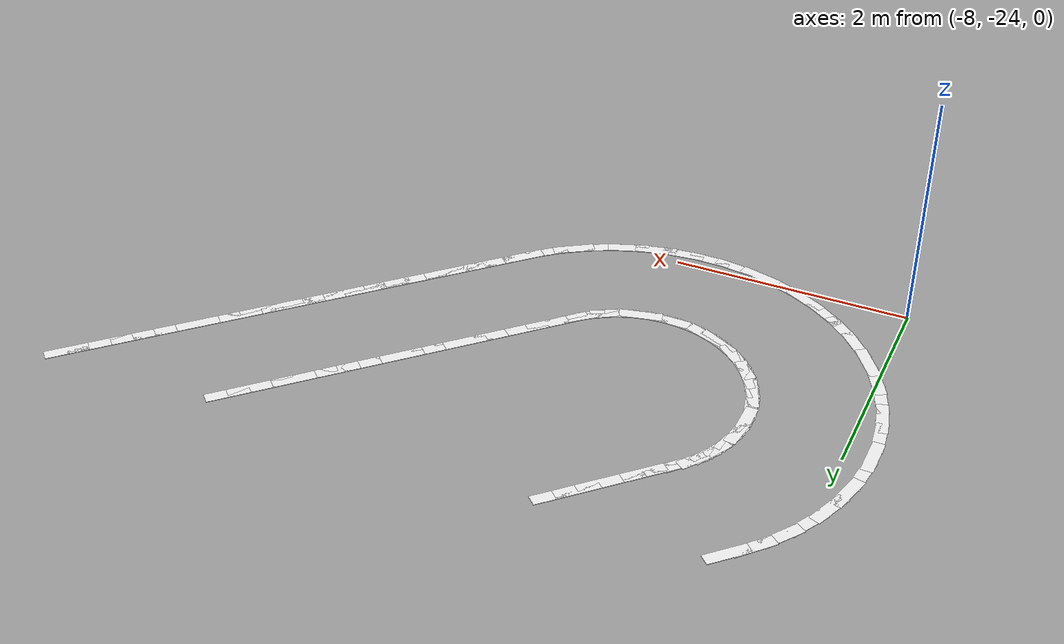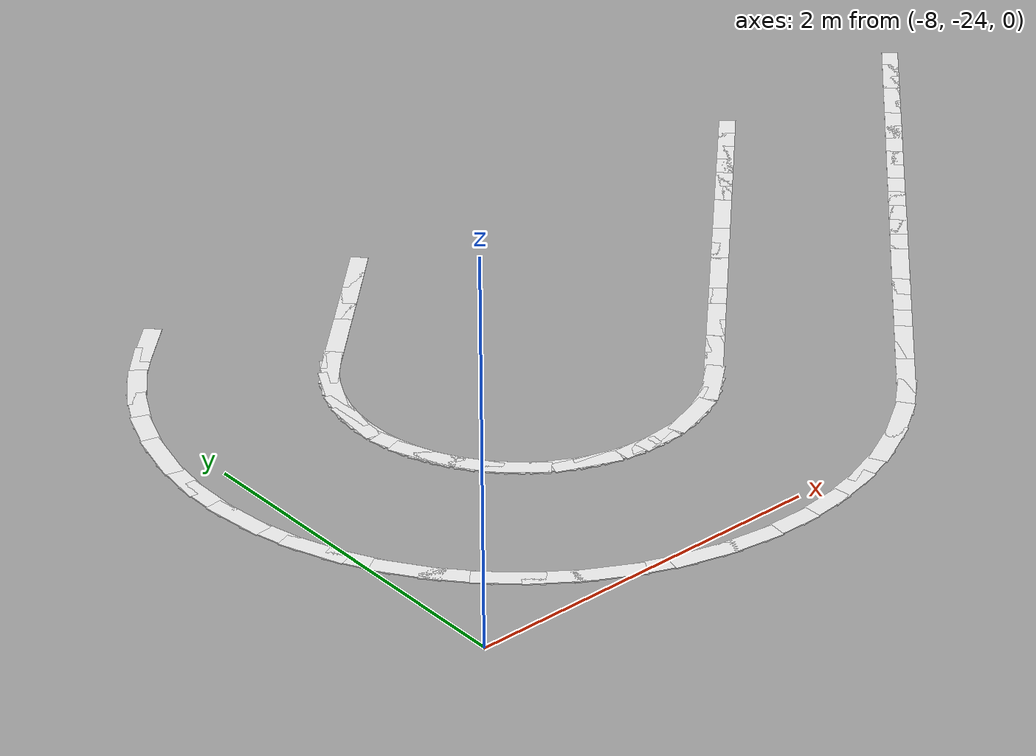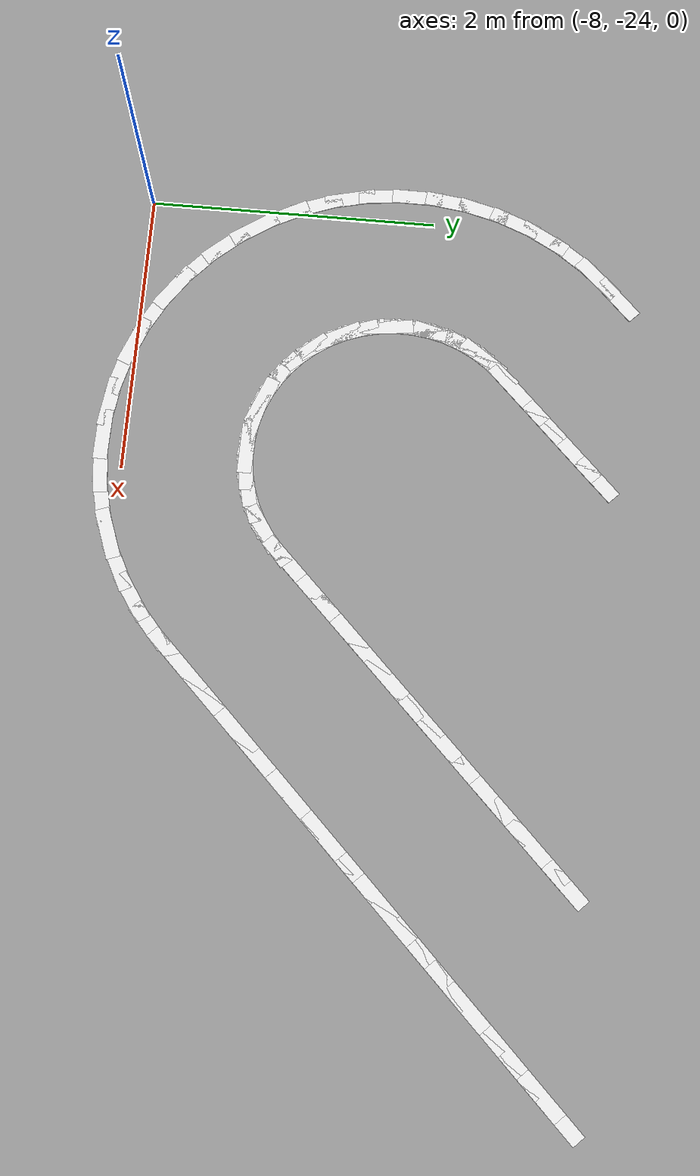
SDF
<sdf version="1.7">
 <world name="cone_lane">
  <model name="ground_plane">
   <static>true</static>
   <link name="link">
    <collision name="collision">
     <geometry><plane><normal>0 0 1</normal><size>150 150</size></plane></geometry>
     <surface><friction><ode><mu>1.0</mu></ode></friction></surface>
    </collision>
   </link>
  </model>
  <model name="line_L219">
   <static>true</static>
   <pose>-6.203 -20.738 0.0030 0 0 -2.3562</pose>
   <link name="link">
    <visual name="v">
     <geometry><box><size>0.360 0.100 0.005</size></box></geometry>
     <material>
      <ambient>0.85 0.85 0.85 1</ambient>
      <diffuse>0.95 0.95 0.95 1</diffuse>
      <specular>0.1 0.1 0.1 1</specular>
      <emissive>0.7 0.7 0.7 1</emissive>
     </material>
    </visual>
   </link>
  </model>
  <model name="line_L220">
   <static>true</static>
   <pose>-6.330 -20.866 0.0030 0 0 -2.3562</pose>
   <link name="link">
    <visual name="v">
     <geometry><box><size>0.360 0.100 0.005</size></box></geometry>
     <material>
      <ambient>0.85 0.85 0.85 1</ambient>
      <diffuse>0.95 0.95 0.95 1</diffuse>
      <specular>0.1 0.1 0.1 1</specular>
      <emissive>0.7 0.7 0.7 1</emissive>
     </material>
    </visual>
   </link>
  </model>
  <model name="line_L221">
   <static>true</static>
   <pose>-6.457 -20.993 0.0030 0 0 -2.3562</pose>
   <link name="link">
    <visual name="v">
     <geometry><box><size>0.360 0.100 0.005</size></box></geometry>
     <material>
      <ambient>0.85 0.85 0.85 1</ambient>
      <diffuse>0.95 0.95 0.95 1</diffuse>
      <specular>0.1 0.1 0.1 1</specular>
      <emissive>0.7 0.7 0.7 1</emissive>
     </material>
    </visual>
   </link>
  </model>
  <model name="line_L222">
   <static>true</static>
   <pose>-6.585 -21.120 0.0030 0 0 -2.3562</pose>
   <link name="link">
    <visual name="v">
     <geometry><box><size>0.360 0.100 0.005</size></box></geometry>
     <material>
      <ambient>0.85 0.85 0.85 1</ambient>
      <diffuse>0.95 0.95 0.95 1</diffuse>
      <specular>0.1 0.1 0.1 1</specular>
      <emissive>0.7 0.7 0.7 1</emissive>
     </material>
    </visual>
   </link>
  </model>
  <model name="line_L223">
   <static>true</static>
   <pose>-6.712 -21.247 0.0030 0 0 -2.3562</pose>
   <link name="link">
    <visual name="v">
     <geometry><box><size>0.360 0.100 0.005</size></box></geometry>
     <material>
      <ambient>0.85 0.85 0.85 1</ambient>
      <diffuse>0.95 0.95 0.95 1</diffuse>
      <specular>0.1 0.1 0.1 1</specular>
      <emissive>0.7 0.7 0.7 1</emissive>
     </material>
    </visual>
   </link>
  </model>
  <model name="line_L224">
   <static>true</static>
   <pose>-6.839 -21.375 0.0030 0 0 -2.3562</pose>
   <link name="link">
    <visual name="v">
     <geometry><box><size>0.360 0.100 0.005</size></box></geometry>
     <material>
      <ambient>0.85 0.85 0.85 1</ambient>
      <diffuse>0.95 0.95 0.95 1</diffuse>
      <specular>0.1 0.1 0.1 1</specular>
      <emissive>0.7 0.7 0.7 1</emissive>
     </material>
    </visual>
   </link>
  </model>
  <model name="line_L225">
   <static>true</static>
   <pose>-6.947 -21.484 0.0030 0 0 -2.3027</pose>
   <link name="link">
    <visual name="v">
     <geometry><box><size>0.360 0.100 0.005</size></box></geometry>
     <material>
      <ambient>0.85 0.85 0.85 1</ambient>
      <diffuse>0.95 0.95 0.95 1</diffuse>
      <specular>0.1 0.1 0.1 1</specular>
      <emissive>0.7 0.7 0.7 1</emissive>
     </material>
    </visual>
   </link>
  </model>
  <model name="line_L226">
   <static>true</static>
   <pose>-7.022 -21.578 0.0030 0 0 -2.1824</pose>
   <link name="link">
    <visual name="v">
     <geometry><box><size>0.360 0.100 0.005</size></box></geometry>
     <material>
      <ambient>0.85 0.85 0.85 1</ambient>
      <diffuse>0.95 0.95 0.95 1</diffuse>
      <specular>0.1 0.1 0.1 1</specular>
      <emissive>0.7 0.7 0.7 1</emissive>
     </material>
    </visual>
   </link>
  </model>
  <model name="line_L227">
   <static>true</static>
   <pose>-7.085 -21.681 0.0030 0 0 -2.0621</pose>
   <link name="link">
    <visual name="v">
     <geometry><box><size>0.360 0.100 0.005</size></box></geometry>
     <material>
      <ambient>0.85 0.85 0.85 1</ambient>
      <diffuse>0.95 0.95 0.95 1</diffuse>
      <specular>0.1 0.1 0.1 1</specular>
      <emissive>0.7 0.7 0.7 1</emissive>
     </material>
    </visual>
   </link>
  </model>
  <model name="line_L228">
   <static>true</static>
   <pose>-7.135 -21.790 0.0030 0 0 -1.9418</pose>
   <link name="link">
    <visual name="v">
     <geometry><box><size>0.360 0.100 0.005</size></box></geometry>
     <material>
      <ambient>0.85 0.85 0.85 1</ambient>
      <diffuse>0.95 0.95 0.95 1</diffuse>
      <specular>0.1 0.1 0.1 1</specular>
      <emissive>0.7 0.7 0.7 1</emissive>
     </material>
    </visual>
   </link>
  </model>
  <model name="line_L229">
   <static>true</static>
   <pose>-7.172 -21.905 0.0030 0 0 -1.8215</pose>
   <link name="link">
    <visual name="v">
     <geometry><box><size>0.360 0.100 0.005</size></box></geometry>
     <material>
      <ambient>0.85 0.85 0.85 1</ambient>
      <diffuse>0.95 0.95 0.95 1</diffuse>
      <specular>0.1 0.1 0.1 1</specular>
      <emissive>0.7 0.7 0.7 1</emissive>
     </material>
    </visual>
   </link>
  </model>
  <model name="line_L230">
   <static>true</static>
   <pose>-7.194 -22.023 0.0030 0 0 -1.7011</pose>
   <link name="link">
    <visual name="v">
     <geometry><box><size>0.360 0.100 0.005</size></box></geometry>
     <material>
      <ambient>0.85 0.85 0.85 1</ambient>
      <diffuse>0.95 0.95 0.95 1</diffuse>
      <specular>0.1 0.1 0.1 1</specular>
      <emissive>0.7 0.7 0.7 1</emissive>
     </material>
    </visual>
   </link>
  </model>
  <model name="line_L231">
   <static>true</static>
   <pose>-7.203 -22.143 0.0030 0 0 -1.5808</pose>
   <link name="link">
    <visual name="v">
     <geometry><box><size>0.360 0.100 0.005</size></box></geometry>
     <material>
      <ambient>0.85 0.85 0.85 1</ambient>
      <diffuse>0.95 0.95 0.95 1</diffuse>
      <specular>0.1 0.1 0.1 1</specular>
      <emissive>0.7 0.7 0.7 1</emissive>
     </material>
    </visual>
   </link>
  </model>
  <model name="line_L232">
   <static>true</static>
   <pose>-7.197 -22.263 0.0030 0 0 -1.4605</pose>
   <link name="link">
    <visual name="v">
     <geometry><box><size>0.360 0.100 0.005</size></box></geometry>
     <material>
      <ambient>0.85 0.85 0.85 1</ambient>
      <diffuse>0.95 0.95 0.95 1</diffuse>
      <specular>0.1 0.1 0.1 1</specular>
      <emissive>0.7 0.7 0.7 1</emissive>
     </material>
    </visual>
   </link>
  </model>
  <model name="line_L233">
   <static>true</static>
   <pose>-7.176 -22.381 0.0030 0 0 -1.3402</pose>
   <link name="link">
    <visual name="v">
     <geometry><box><size>0.360 0.100 0.005</size></box></geometry>
     <material>
      <ambient>0.85 0.85 0.85 1</ambient>
      <diffuse>0.95 0.95 0.95 1</diffuse>
      <specular>0.1 0.1 0.1 1</specular>
      <emissive>0.7 0.7 0.7 1</emissive>
     </material>
    </visual>
   </link>
  </model>
  <model name="line_L234">
   <static>true</static>
   <pose>-7.142 -22.496 0.0030 0 0 -1.2199</pose>
   <link name="link">
    <visual name="v">
     <geometry><box><size>0.360 0.100 0.005</size></box></geometry>
     <material>
      <ambient>0.85 0.85 0.85 1</ambient>
      <diffuse>0.95 0.95 0.95 1</diffuse>
      <specular>0.1 0.1 0.1 1</specular>
      <emissive>0.7 0.7 0.7 1</emissive>
     </material>
    </visual>
   </link>
  </model>
  <model name="line_L235">
   <static>true</static>
   <pose>-7.094 -22.607 0.0030 0 0 -1.0996</pose>
   <link name="link">
    <visual name="v">
     <geometry><box><size>0.360 0.100 0.005</size></box></geometry>
     <material>
      <ambient>0.85 0.85 0.85 1</ambient>
      <diffuse>0.95 0.95 0.95 1</diffuse>
      <specular>0.1 0.1 0.1 1</specular>
      <emissive>0.7 0.7 0.7 1</emissive>
     </material>
    </visual>
   </link>
  </model>
  <model name="line_L236">
   <static>true</static>
   <pose>-7.033 -22.710 0.0030 0 0 -0.9792</pose>
   <link name="link">
    <visual name="v">
     <geometry><box><size>0.360 0.100 0.005</size></box></geometry>
     <material>
      <ambient>0.85 0.85 0.85 1</ambient>
      <diffuse>0.95 0.95 0.95 1</diffuse>
      <specular>0.1 0.1 0.1 1</specular>
      <emissive>0.7 0.7 0.7 1</emissive>
     </material>
    </visual>
   </link>
  </model>
  <model name="line_L237">
   <static>true</static>
   <pose>-6.960 -22.806 0.0030 0 0 -0.8589</pose>
   <link name="link">
    <visual name="v">
     <geometry><box><size>0.360 0.100 0.005</size></box></geometry>
     <material>
      <ambient>0.85 0.85 0.85 1</ambient>
      <diffuse>0.95 0.95 0.95 1</diffuse>
      <specular>0.1 0.1 0.1 1</specular>
      <emissive>0.7 0.7 0.7 1</emissive>
     </material>
    </visual>
   </link>
  </model>
  <model name="line_L238">
   <static>true</static>
   <pose>-6.876 -22.892 0.0030 0 0 -0.7386</pose>
   <link name="link">
    <visual name="v">
     <geometry><box><size>0.360 0.100 0.005</size></box></geometry>
     <material>
      <ambient>0.85 0.85 0.85 1</ambient>
      <diffuse>0.95 0.95 0.95 1</diffuse>
      <specular>0.1 0.1 0.1 1</specular>
      <emissive>0.7 0.7 0.7 1</emissive>
     </material>
    </visual>
   </link>
  </model>
  <model name="line_L239">
   <static>true</static>
   <pose>-6.782 -22.967 0.0030 0 0 -0.6183</pose>
   <link name="link">
    <visual name="v">
     <geometry><box><size>0.360 0.100 0.005</size></box></geometry>
     <material>
      <ambient>0.85 0.85 0.85 1</ambient>
      <diffuse>0.95 0.95 0.95 1</diffuse>
      <specular>0.1 0.1 0.1 1</specular>
      <emissive>0.7 0.7 0.7 1</emissive>
     </material>
    </visual>
   </link>
  </model>
  <model name="line_L240">
   <static>true</static>
   <pose>-6.680 -23.031 0.0030 0 0 -0.4980</pose>
   <link name="link">
    <visual name="v">
     <geometry><box><size>0.360 0.100 0.005</size></box></geometry>
     <material>
      <ambient>0.85 0.85 0.85 1</ambient>
      <diffuse>0.95 0.95 0.95 1</diffuse>
      <specular>0.1 0.1 0.1 1</specular>
      <emissive>0.7 0.7 0.7 1</emissive>
     </material>
    </visual>
   </link>
  </model>
  <model name="line_L241">
   <static>true</static>
   <pose>-6.572 -23.082 0.0030 0 0 -0.3777</pose>
   <link name="link">
    <visual name="v">
     <geometry><box><size>0.360 0.100 0.005</size></box></geometry>
     <material>
      <ambient>0.85 0.85 0.85 1</ambient>
      <diffuse>0.95 0.95 0.95 1</diffuse>
      <specular>0.1 0.1 0.1 1</specular>
      <emissive>0.7 0.7 0.7 1</emissive>
     </material>
    </visual>
   </link>
  </model>
  <model name="line_L242">
   <static>true</static>
   <pose>-6.457 -23.120 0.0030 0 0 -0.2573</pose>
   <link name="link">
    <visual name="v">
     <geometry><box><size>0.360 0.100 0.005</size></box></geometry>
     <material>
      <ambient>0.85 0.85 0.85 1</ambient>
      <diffuse>0.95 0.95 0.95 1</diffuse>
      <specular>0.1 0.1 0.1 1</specular>
      <emissive>0.7 0.7 0.7 1</emissive>
     </material>
    </visual>
   </link>
  </model>
  <model name="line_L243">
   <static>true</static>
   <pose>-6.339 -23.143 0.0030 0 0 -0.1370</pose>
   <link name="link">
    <visual name="v">
     <geometry><box><size>0.360 0.100 0.005</size></box></geometry>
     <material>
      <ambient>0.85 0.85 0.85 1</ambient>
      <diffuse>0.95 0.95 0.95 1</diffuse>
      <specular>0.1 0.1 0.1 1</specular>
      <emissive>0.7 0.7 0.7 1</emissive>
     </material>
    </visual>
   </link>
  </model>
  <model name="line_L244">
   <static>true</static>
   <pose>-6.220 -23.152 0.0030 0 0 -0.0167</pose>
   <link name="link">
    <visual name="v">
     <geometry><box><size>0.360 0.100 0.005</size></box></geometry>
     <material>
      <ambient>0.85 0.85 0.85 1</ambient>
      <diffuse>0.95 0.95 0.95 1</diffuse>
      <specular>0.1 0.1 0.1 1</specular>
      <emissive>0.7 0.7 0.7 1</emissive>
     </material>
    </visual>
   </link>
  </model>
  <model name="line_L245">
   <static>true</static>
   <pose>-6.099 -23.147 0.0030 0 0 0.1036</pose>
   <link name="link">
    <visual name="v">
     <geometry><box><size>0.360 0.100 0.005</size></box></geometry>
     <material>
      <ambient>0.85 0.85 0.85 1</ambient>
      <diffuse>0.95 0.95 0.95 1</diffuse>
      <specular>0.1 0.1 0.1 1</specular>
      <emissive>0.7 0.7 0.7 1</emissive>
     </material>
    </visual>
   </link>
  </model>
  <model name="line_L246">
   <static>true</static>
   <pose>-5.981 -23.128 0.0030 0 0 0.2239</pose>
   <link name="link">
    <visual name="v">
     <geometry><box><size>0.360 0.100 0.005</size></box></geometry>
     <material>
      <ambient>0.85 0.85 0.85 1</ambient>
      <diffuse>0.95 0.95 0.95 1</diffuse>
      <specular>0.1 0.1 0.1 1</specular>
      <emissive>0.7 0.7 0.7 1</emissive>
     </material>
    </visual>
   </link>
  </model>
  <model name="line_L247">
   <static>true</static>
   <pose>-5.865 -23.094 0.0030 0 0 0.3442</pose>
   <link name="link">
    <visual name="v">
     <geometry><box><size>0.360 0.100 0.005</size></box></geometry>
     <material>
      <ambient>0.85 0.85 0.85 1</ambient>
      <diffuse>0.95 0.95 0.95 1</diffuse>
      <specular>0.1 0.1 0.1 1</specular>
      <emissive>0.7 0.7 0.7 1</emissive>
     </material>
    </visual>
   </link>
  </model>
  <model name="line_L248">
   <static>true</static>
   <pose>-5.755 -23.047 0.0030 0 0 0.4646</pose>
   <link name="link">
    <visual name="v">
     <geometry><box><size>0.360 0.100 0.005</size></box></geometry>
     <material>
      <ambient>0.85 0.85 0.85 1</ambient>
      <diffuse>0.95 0.95 0.95 1</diffuse>
      <specular>0.1 0.1 0.1 1</specular>
      <emissive>0.7 0.7 0.7 1</emissive>
     </material>
    </visual>
   </link>
  </model>
  <model name="line_L249">
   <static>true</static>
   <pose>-5.651 -22.986 0.0030 0 0 0.5849</pose>
   <link name="link">
    <visual name="v">
     <geometry><box><size>0.360 0.100 0.005</size></box></geometry>
     <material>
      <ambient>0.85 0.85 0.85 1</ambient>
      <diffuse>0.95 0.95 0.95 1</diffuse>
      <specular>0.1 0.1 0.1 1</specular>
      <emissive>0.7 0.7 0.7 1</emissive>
     </material>
    </visual>
   </link>
  </model>
  <model name="line_L250">
   <static>true</static>
   <pose>-5.555 -22.914 0.0030 0 0 0.7052</pose>
   <link name="link">
    <visual name="v">
     <geometry><box><size>0.360 0.100 0.005</size></box></geometry>
     <material>
      <ambient>0.85 0.85 0.85 1</ambient>
      <diffuse>0.95 0.95 0.95 1</diffuse>
      <specular>0.1 0.1 0.1 1</specular>
      <emissive>0.7 0.7 0.7 1</emissive>
     </material>
    </visual>
   </link>
  </model>
  <model name="line_L251">
   <static>true</static>
   <pose>-5.453 -22.817 0.0030 0 0 0.7854</pose>
   <link name="link">
    <visual name="v">
     <geometry><box><size>0.360 0.100 0.005</size></box></geometry>
     <material>
      <ambient>0.85 0.85 0.85 1</ambient>
      <diffuse>0.95 0.95 0.95 1</diffuse>
      <specular>0.1 0.1 0.1 1</specular>
      <emissive>0.7 0.7 0.7 1</emissive>
     </material>
    </visual>
   </link>
  </model>
  <model name="line_L252">
   <static>true</static>
   <pose>-5.326 -22.690 0.0030 0 0 0.7854</pose>
   <link name="link">
    <visual name="v">
     <geometry><box><size>0.360 0.100 0.005</size></box></geometry>
     <material>
      <ambient>0.85 0.85 0.85 1</ambient>
      <diffuse>0.95 0.95 0.95 1</diffuse>
      <specular>0.1 0.1 0.1 1</specular>
      <emissive>0.7 0.7 0.7 1</emissive>
     </material>
    </visual>
   </link>
  </model>
  <model name="line_L253">
   <static>true</static>
   <pose>-5.199 -22.563 0.0030 0 0 0.7854</pose>
   <link name="link">
    <visual name="v">
     <geometry><box><size>0.360 0.100 0.005</size></box></geometry>
     <material>
      <ambient>0.85 0.85 0.85 1</ambient>
      <diffuse>0.95 0.95 0.95 1</diffuse>
      <specular>0.1 0.1 0.1 1</specular>
      <emissive>0.7 0.7 0.7 1</emissive>
     </material>
    </visual>
   </link>
  </model>
  <model name="line_L254">
   <static>true</static>
   <pose>-5.071 -22.435 0.0030 0 0 0.7854</pose>
   <link name="link">
    <visual name="v">
     <geometry><box><size>0.360 0.100 0.005</size></box></geometry>
     <material>
      <ambient>0.85 0.85 0.85 1</ambient>
      <diffuse>0.95 0.95 0.95 1</diffuse>
      <specular>0.1 0.1 0.1 1</specular>
      <emissive>0.7 0.7 0.7 1</emissive>
     </material>
    </visual>
   </link>
  </model>
  <model name="line_L255">
   <static>true</static>
   <pose>-4.944 -22.308 0.0030 0 0 0.7854</pose>
   <link name="link">
    <visual name="v">
     <geometry><box><size>0.360 0.100 0.005</size></box></geometry>
     <material>
      <ambient>0.85 0.85 0.85 1</ambient>
      <diffuse>0.95 0.95 0.95 1</diffuse>
      <specular>0.1 0.1 0.1 1</specular>
      <emissive>0.7 0.7 0.7 1</emissive>
     </material>
    </visual>
   </link>
  </model>
  <model name="line_L256">
   <static>true</static>
   <pose>-4.817 -22.181 0.0030 0 0 0.7854</pose>
   <link name="link">
    <visual name="v">
     <geometry><box><size>0.360 0.100 0.005</size></box></geometry>
     <material>
      <ambient>0.85 0.85 0.85 1</ambient>
      <diffuse>0.95 0.95 0.95 1</diffuse>
      <specular>0.1 0.1 0.1 1</specular>
      <emissive>0.7 0.7 0.7 1</emissive>
     </material>
    </visual>
   </link>
  </model>
  <model name="line_L257">
   <static>true</static>
   <pose>-4.690 -22.054 0.0030 0 0 0.7854</pose>
   <link name="link">
    <visual name="v">
     <geometry><box><size>0.360 0.100 0.005</size></box></geometry>
     <material>
      <ambient>0.85 0.85 0.85 1</ambient>
      <diffuse>0.95 0.95 0.95 1</diffuse>
      <specular>0.1 0.1 0.1 1</specular>
      <emissive>0.7 0.7 0.7 1</emissive>
     </material>
    </visual>
   </link>
  </model>
  <model name="line_L258">
   <static>true</static>
   <pose>-4.562 -21.926 0.0030 0 0 0.7854</pose>
   <link name="link">
    <visual name="v">
     <geometry><box><size>0.360 0.100 0.005</size></box></geometry>
     <material>
      <ambient>0.85 0.85 0.85 1</ambient>
      <diffuse>0.95 0.95 0.95 1</diffuse>
      <specular>0.1 0.1 0.1 1</specular>
      <emissive>0.7 0.7 0.7 1</emissive>
     </material>
    </visual>
   </link>
  </model>
  <model name="line_L259">
   <static>true</static>
   <pose>-4.435 -21.799 0.0030 0 0 0.7854</pose>
   <link name="link">
    <visual name="v">
     <geometry><box><size>0.360 0.100 0.005</size></box></geometry>
     <material>
      <ambient>0.85 0.85 0.85 1</ambient>
      <diffuse>0.95 0.95 0.95 1</diffuse>
      <specular>0.1 0.1 0.1 1</specular>
      <emissive>0.7 0.7 0.7 1</emissive>
     </material>
    </visual>
   </link>
  </model>
  <model name="line_L260">
   <static>true</static>
   <pose>-4.308 -21.672 0.0030 0 0 0.7854</pose>
   <link name="link">
    <visual name="v">
     <geometry><box><size>0.360 0.100 0.005</size></box></geometry>
     <material>
      <ambient>0.85 0.85 0.85 1</ambient>
      <diffuse>0.95 0.95 0.95 1</diffuse>
      <specular>0.1 0.1 0.1 1</specular>
      <emissive>0.7 0.7 0.7 1</emissive>
     </material>
    </visual>
   </link>
  </model>
  <model name="line_L261">
   <static>true</static>
   <pose>-4.180 -21.544 0.0030 0 0 0.7854</pose>
   <link name="link">
    <visual name="v">
     <geometry><box><size>0.360 0.100 0.005</size></box></geometry>
     <material>
      <ambient>0.85 0.85 0.85 1</ambient>
      <diffuse>0.95 0.95 0.95 1</diffuse>
      <specular>0.1 0.1 0.1 1</specular>
      <emissive>0.7 0.7 0.7 1</emissive>
     </material>
    </visual>
   </link>
  </model>
  <model name="line_L262">
   <static>true</static>
   <pose>-4.053 -21.417 0.0030 0 0 0.7854</pose>
   <link name="link">
    <visual name="v">
     <geometry><box><size>0.360 0.100 0.005</size></box></geometry>
     <material>
      <ambient>0.85 0.85 0.85 1</ambient>
      <diffuse>0.95 0.95 0.95 1</diffuse>
      <specular>0.1 0.1 0.1 1</specular>
      <emissive>0.7 0.7 0.7 1</emissive>
     </material>
    </visual>
   </link>
  </model>
  <model name="line_L263">
   <static>true</static>
   <pose>-3.926 -21.290 0.0030 0 0 0.7854</pose>
   <link name="link">
    <visual name="v">
     <geometry><box><size>0.360 0.100 0.005</size></box></geometry>
     <material>
      <ambient>0.85 0.85 0.85 1</ambient>
      <diffuse>0.95 0.95 0.95 1</diffuse>
      <specular>0.1 0.1 0.1 1</specular>
      <emissive>0.7 0.7 0.7 1</emissive>
     </material>
    </visual>
   </link>
  </model>
  <model name="line_L264">
   <static>true</static>
   <pose>-3.799 -21.163 0.0030 0 0 0.7854</pose>
   <link name="link">
    <visual name="v">
     <geometry><box><size>0.360 0.100 0.005</size></box></geometry>
     <material>
      <ambient>0.85 0.85 0.85 1</ambient>
      <diffuse>0.95 0.95 0.95 1</diffuse>
      <specular>0.1 0.1 0.1 1</specular>
      <emissive>0.7 0.7 0.7 1</emissive>
     </material>
    </visual>
   </link>
  </model>
  <model name="line_L265">
   <static>true</static>
   <pose>-3.671 -21.035 0.0030 0 0 0.7854</pose>
   <link name="link">
    <visual name="v">
     <geometry><box><size>0.360 0.100 0.005</size></box></geometry>
     <material>
      <ambient>0.85 0.85 0.85 1</ambient>
      <diffuse>0.95 0.95 0.95 1</diffuse>
      <specular>0.1 0.1 0.1 1</specular>
      <emissive>0.7 0.7 0.7 1</emissive>
     </material>
    </visual>
   </link>
  </model>
  <model name="line_L266">
   <static>true</static>
   <pose>-3.544 -20.908 0.0030 0 0 0.7854</pose>
   <link name="link">
    <visual name="v">
     <geometry><box><size>0.360 0.100 0.005</size></box></geometry>
     <material>
      <ambient>0.85 0.85 0.85 1</ambient>
      <diffuse>0.95 0.95 0.95 1</diffuse>
      <specular>0.1 0.1 0.1 1</specular>
      <emissive>0.7 0.7 0.7 1</emissive>
     </material>
    </visual>
   </link>
  </model>
  <model name="line_L267">
   <static>true</static>
   <pose>-3.417 -20.781 0.0030 0 0 0.7854</pose>
   <link name="link">
    <visual name="v">
     <geometry><box><size>0.360 0.100 0.005</size></box></geometry>
     <material>
      <ambient>0.85 0.85 0.85 1</ambient>
      <diffuse>0.95 0.95 0.95 1</diffuse>
      <specular>0.1 0.1 0.1 1</specular>
      <emissive>0.7 0.7 0.7 1</emissive>
     </material>
    </visual>
   </link>
  </model>
  <model name="line_R224">
   <static>true</static>
   <pose>-7.546 -20.668 0.0030 0 0 -2.3562</pose>
   <link name="link">
    <visual name="v">
     <geometry><box><size>0.360 0.100 0.005</size></box></geometry>
     <material>
      <ambient>0.85 0.85 0.85 1</ambient>
      <diffuse>0.95 0.95 0.95 1</diffuse>
      <specular>0.1 0.1 0.1 1</specular>
      <emissive>0.7 0.7 0.7 1</emissive>
     </material>
    </visual>
   </link>
  </model>
  <model name="line_R225">
   <static>true</static>
   <pose>-7.691 -20.816 0.0030 0 0 -2.3027</pose>
   <link name="link">
    <visual name="v">
     <geometry><box><size>0.360 0.100 0.005</size></box></geometry>
     <material>
      <ambient>0.85 0.85 0.85 1</ambient>
      <diffuse>0.95 0.95 0.95 1</diffuse>
      <specular>0.1 0.1 0.1 1</specular>
      <emissive>0.7 0.7 0.7 1</emissive>
     </material>
    </visual>
   </link>
  </model>
  <model name="line_R226">
   <static>true</static>
   <pose>-7.840 -21.004 0.0030 0 0 -2.1824</pose>
   <link name="link">
    <visual name="v">
     <geometry><box><size>0.360 0.100 0.005</size></box></geometry>
     <material>
      <ambient>0.85 0.85 0.85 1</ambient>
      <diffuse>0.95 0.95 0.95 1</diffuse>
      <specular>0.1 0.1 0.1 1</specular>
      <emissive>0.7 0.7 0.7 1</emissive>
     </material>
    </visual>
   </link>
  </model>
  <model name="line_R227">
   <static>true</static>
   <pose>-7.966 -21.209 0.0030 0 0 -2.0621</pose>
   <link name="link">
    <visual name="v">
     <geometry><box><size>0.360 0.100 0.005</size></box></geometry>
     <material>
      <ambient>0.85 0.85 0.85 1</ambient>
      <diffuse>0.95 0.95 0.95 1</diffuse>
      <specular>0.1 0.1 0.1 1</specular>
      <emissive>0.7 0.7 0.7 1</emissive>
     </material>
    </visual>
   </link>
  </model>
  <model name="line_R228">
   <static>true</static>
   <pose>-8.067 -21.427 0.0030 0 0 -1.9418</pose>
   <link name="link">
    <visual name="v">
     <geometry><box><size>0.360 0.100 0.005</size></box></geometry>
     <material>
      <ambient>0.85 0.85 0.85 1</ambient>
      <diffuse>0.95 0.95 0.95 1</diffuse>
      <specular>0.1 0.1 0.1 1</specular>
      <emissive>0.7 0.7 0.7 1</emissive>
     </material>
    </visual>
   </link>
  </model>
  <model name="line_R229">
   <static>true</static>
   <pose>-8.140 -21.656 0.0030 0 0 -1.8215</pose>
   <link name="link">
    <visual name="v">
     <geometry><box><size>0.360 0.100 0.005</size></box></geometry>
     <material>
      <ambient>0.85 0.85 0.85 1</ambient>
      <diffuse>0.95 0.95 0.95 1</diffuse>
      <specular>0.1 0.1 0.1 1</specular>
      <emissive>0.7 0.7 0.7 1</emissive>
     </material>
    </visual>
   </link>
  </model>
  <model name="line_R230">
   <static>true</static>
   <pose>-8.186 -21.893 0.0030 0 0 -1.7011</pose>
   <link name="link">
    <visual name="v">
     <geometry><box><size>0.360 0.100 0.005</size></box></geometry>
     <material>
      <ambient>0.85 0.85 0.85 1</ambient>
      <diffuse>0.95 0.95 0.95 1</diffuse>
      <specular>0.1 0.1 0.1 1</specular>
      <emissive>0.7 0.7 0.7 1</emissive>
     </material>
    </visual>
   </link>
  </model>
  <model name="line_R231">
   <static>true</static>
   <pose>-8.203 -22.132 0.0030 0 0 -1.5808</pose>
   <link name="link">
    <visual name="v">
     <geometry><box><size>0.360 0.100 0.005</size></box></geometry>
     <material>
      <ambient>0.85 0.85 0.85 1</ambient>
      <diffuse>0.95 0.95 0.95 1</diffuse>
      <specular>0.1 0.1 0.1 1</specular>
      <emissive>0.7 0.7 0.7 1</emissive>
     </material>
    </visual>
   </link>
  </model>
  <model name="line_R232">
   <static>true</static>
   <pose>-8.191 -22.373 0.0030 0 0 -1.4605</pose>
   <link name="link">
    <visual name="v">
     <geometry><box><size>0.360 0.100 0.005</size></box></geometry>
     <material>
      <ambient>0.85 0.85 0.85 1</ambient>
      <diffuse>0.95 0.95 0.95 1</diffuse>
      <specular>0.1 0.1 0.1 1</specular>
      <emissive>0.7 0.7 0.7 1</emissive>
     </material>
    </visual>
   </link>
  </model>
  <model name="line_R233">
   <static>true</static>
   <pose>-8.150 -22.610 0.0030 0 0 -1.3402</pose>
   <link name="link">
    <visual name="v">
     <geometry><box><size>0.360 0.100 0.005</size></box></geometry>
     <material>
      <ambient>0.85 0.85 0.85 1</ambient>
      <diffuse>0.95 0.95 0.95 1</diffuse>
      <specular>0.1 0.1 0.1 1</specular>
      <emissive>0.7 0.7 0.7 1</emissive>
     </material>
    </visual>
   </link>
  </model>
  <model name="line_R234">
   <static>true</static>
   <pose>-8.081 -22.840 0.0030 0 0 -1.2199</pose>
   <link name="link">
    <visual name="v">
     <geometry><box><size>0.360 0.100 0.005</size></box></geometry>
     <material>
      <ambient>0.85 0.85 0.85 1</ambient>
      <diffuse>0.95 0.95 0.95 1</diffuse>
      <specular>0.1 0.1 0.1 1</specular>
      <emissive>0.7 0.7 0.7 1</emissive>
     </material>
    </visual>
   </link>
  </model>
  <model name="line_R235">
   <static>true</static>
   <pose>-7.985 -23.061 0.0030 0 0 -1.0996</pose>
   <link name="link">
    <visual name="v">
     <geometry><box><size>0.360 0.100 0.005</size></box></geometry>
     <material>
      <ambient>0.85 0.85 0.85 1</ambient>
      <diffuse>0.95 0.95 0.95 1</diffuse>
      <specular>0.1 0.1 0.1 1</specular>
      <emissive>0.7 0.7 0.7 1</emissive>
     </material>
    </visual>
   </link>
  </model>
  <model name="line_R236">
   <static>true</static>
   <pose>-7.863 -23.268 0.0030 0 0 -0.9792</pose>
   <link name="link">
    <visual name="v">
     <geometry><box><size>0.360 0.100 0.005</size></box></geometry>
     <material>
      <ambient>0.85 0.85 0.85 1</ambient>
      <diffuse>0.95 0.95 0.95 1</diffuse>
      <specular>0.1 0.1 0.1 1</specular>
      <emissive>0.7 0.7 0.7 1</emissive>
     </material>
    </visual>
   </link>
  </model>
  <model name="line_R237">
   <static>true</static>
   <pose>-7.717 -23.459 0.0030 0 0 -0.8589</pose>
   <link name="link">
    <visual name="v">
     <geometry><box><size>0.360 0.100 0.005</size></box></geometry>
     <material>
      <ambient>0.85 0.85 0.85 1</ambient>
      <diffuse>0.95 0.95 0.95 1</diffuse>
      <specular>0.1 0.1 0.1 1</specular>
      <emissive>0.7 0.7 0.7 1</emissive>
     </material>
    </visual>
   </link>
  </model>
  <model name="line_R238">
   <static>true</static>
   <pose>-7.549 -23.631 0.0030 0 0 -0.7386</pose>
   <link name="link">
    <visual name="v">
     <geometry><box><size>0.360 0.100 0.005</size></box></geometry>
     <material>
      <ambient>0.85 0.85 0.85 1</ambient>
      <diffuse>0.95 0.95 0.95 1</diffuse>
      <specular>0.1 0.1 0.1 1</specular>
      <emissive>0.7 0.7 0.7 1</emissive>
     </material>
    </visual>
   </link>
  </model>
  <model name="line_R239">
   <static>true</static>
   <pose>-7.362 -23.782 0.0030 0 0 -0.6183</pose>
   <link name="link">
    <visual name="v">
     <geometry><box><size>0.360 0.100 0.005</size></box></geometry>
     <material>
      <ambient>0.85 0.85 0.85 1</ambient>
      <diffuse>0.95 0.95 0.95 1</diffuse>
      <specular>0.1 0.1 0.1 1</specular>
      <emissive>0.7 0.7 0.7 1</emissive>
     </material>
    </visual>
   </link>
  </model>
  <model name="line_R240">
   <static>true</static>
   <pose>-7.158 -23.910 0.0030 0 0 -0.4980</pose>
   <link name="link">
    <visual name="v">
     <geometry><box><size>0.360 0.100 0.005</size></box></geometry>
     <material>
      <ambient>0.85 0.85 0.85 1</ambient>
      <diffuse>0.95 0.95 0.95 1</diffuse>
      <specular>0.1 0.1 0.1 1</specular>
      <emissive>0.7 0.7 0.7 1</emissive>
     </material>
    </visual>
   </link>
  </model>
  <model name="line_R241">
   <static>true</static>
   <pose>-6.940 -24.012 0.0030 0 0 -0.3777</pose>
   <link name="link">
    <visual name="v">
     <geometry><box><size>0.360 0.100 0.005</size></box></geometry>
     <material>
      <ambient>0.85 0.85 0.85 1</ambient>
      <diffuse>0.95 0.95 0.95 1</diffuse>
      <specular>0.1 0.1 0.1 1</specular>
      <emissive>0.7 0.7 0.7 1</emissive>
     </material>
    </visual>
   </link>
  </model>
  <model name="line_R242">
   <static>true</static>
   <pose>-6.712 -24.087 0.0030 0 0 -0.2573</pose>
   <link name="link">
    <visual name="v">
     <geometry><box><size>0.360 0.100 0.005</size></box></geometry>
     <material>
      <ambient>0.85 0.85 0.85 1</ambient>
      <diffuse>0.95 0.95 0.95 1</diffuse>
      <specular>0.1 0.1 0.1 1</specular>
      <emissive>0.7 0.7 0.7 1</emissive>
     </material>
    </visual>
   </link>
  </model>
  <model name="line_R243">
   <static>true</static>
   <pose>-6.476 -24.134 0.0030 0 0 -0.1370</pose>
   <link name="link">
    <visual name="v">
     <geometry><box><size>0.360 0.100 0.005</size></box></geometry>
     <material>
      <ambient>0.85 0.85 0.85 1</ambient>
      <diffuse>0.95 0.95 0.95 1</diffuse>
      <specular>0.1 0.1 0.1 1</specular>
      <emissive>0.7 0.7 0.7 1</emissive>
     </material>
    </visual>
   </link>
  </model>
  <model name="line_R244">
   <static>true</static>
   <pose>-6.236 -24.152 0.0030 0 0 -0.0167</pose>
   <link name="link">
    <visual name="v">
     <geometry><box><size>0.360 0.100 0.005</size></box></geometry>
     <material>
      <ambient>0.85 0.85 0.85 1</ambient>
      <diffuse>0.95 0.95 0.95 1</diffuse>
      <specular>0.1 0.1 0.1 1</specular>
      <emissive>0.7 0.7 0.7 1</emissive>
     </material>
    </visual>
   </link>
  </model>
  <model name="line_R245">
   <static>true</static>
   <pose>-5.996 -24.142 0.0030 0 0 0.1036</pose>
   <link name="link">
    <visual name="v">
     <geometry><box><size>0.360 0.100 0.005</size></box></geometry>
     <material>
      <ambient>0.85 0.85 0.85 1</ambient>
      <diffuse>0.95 0.95 0.95 1</diffuse>
      <specular>0.1 0.1 0.1 1</specular>
      <emissive>0.7 0.7 0.7 1</emissive>
     </material>
    </visual>
   </link>
  </model>
  <model name="line_R246">
   <static>true</static>
   <pose>-5.759 -24.103 0.0030 0 0 0.2239</pose>
   <link name="link">
    <visual name="v">
     <geometry><box><size>0.360 0.100 0.005</size></box></geometry>
     <material>
      <ambient>0.85 0.85 0.85 1</ambient>
      <diffuse>0.95 0.95 0.95 1</diffuse>
      <specular>0.1 0.1 0.1 1</specular>
      <emissive>0.7 0.7 0.7 1</emissive>
     </material>
    </visual>
   </link>
  </model>
  <model name="line_R247">
   <static>true</static>
   <pose>-5.528 -24.035 0.0030 0 0 0.3442</pose>
   <link name="link">
    <visual name="v">
     <geometry><box><size>0.360 0.100 0.005</size></box></geometry>
     <material>
      <ambient>0.85 0.85 0.85 1</ambient>
      <diffuse>0.95 0.95 0.95 1</diffuse>
      <specular>0.1 0.1 0.1 1</specular>
      <emissive>0.7 0.7 0.7 1</emissive>
     </material>
    </visual>
   </link>
  </model>
  <model name="line_R248">
   <static>true</static>
   <pose>-5.307 -23.941 0.0030 0 0 0.4646</pose>
   <link name="link">
    <visual name="v">
     <geometry><box><size>0.360 0.100 0.005</size></box></geometry>
     <material>
      <ambient>0.85 0.85 0.85 1</ambient>
      <diffuse>0.95 0.95 0.95 1</diffuse>
      <specular>0.1 0.1 0.1 1</specular>
      <emissive>0.7 0.7 0.7 1</emissive>
     </material>
    </visual>
   </link>
  </model>
  <model name="line_R249">
   <static>true</static>
   <pose>-5.099 -23.820 0.0030 0 0 0.5849</pose>
   <link name="link">
    <visual name="v">
     <geometry><box><size>0.360 0.100 0.005</size></box></geometry>
     <material>
      <ambient>0.85 0.85 0.85 1</ambient>
      <diffuse>0.95 0.95 0.95 1</diffuse>
      <specular>0.1 0.1 0.1 1</specular>
      <emissive>0.7 0.7 0.7 1</emissive>
     </material>
    </visual>
   </link>
  </model>
  <model name="line_R250">
   <static>true</static>
   <pose>-4.906 -23.676 0.0030 0 0 0.7052</pose>
   <link name="link">
    <visual name="v">
     <geometry><box><size>0.360 0.100 0.005</size></box></geometry>
     <material>
      <ambient>0.85 0.85 0.85 1</ambient>
      <diffuse>0.95 0.95 0.95 1</diffuse>
      <specular>0.1 0.1 0.1 1</specular>
      <emissive>0.7 0.7 0.7 1</emissive>
     </material>
    </visual>
   </link>
  </model>
  <model name="line_R251">
   <static>true</static>
   <pose>-4.746 -23.524 0.0030 0 0 0.7854</pose>
   <link name="link">
    <visual name="v">
     <geometry><box><size>0.360 0.100 0.005</size></box></geometry>
     <material>
      <ambient>0.85 0.85 0.85 1</ambient>
      <diffuse>0.95 0.95 0.95 1</diffuse>
      <specular>0.1 0.1 0.1 1</specular>
      <emissive>0.7 0.7 0.7 1</emissive>
     </material>
    </visual>
   </link>
  </model>
  <model name="line_R252">
   <static>true</static>
   <pose>-4.619 -23.397 0.0030 0 0 0.7854</pose>
   <link name="link">
    <visual name="v">
     <geometry><box><size>0.360 0.100 0.005</size></box></geometry>
     <material>
      <ambient>0.85 0.85 0.85 1</ambient>
      <diffuse>0.95 0.95 0.95 1</diffuse>
      <specular>0.1 0.1 0.1 1</specular>
      <emissive>0.7 0.7 0.7 1</emissive>
     </material>
    </visual>
   </link>
  </model>
  <model name="line_R253">
   <static>true</static>
   <pose>-4.492 -23.270 0.0030 0 0 0.7854</pose>
   <link name="link">
    <visual name="v">
     <geometry><box><size>0.360 0.100 0.005</size></box></geometry>
     <material>
      <ambient>0.85 0.85 0.85 1</ambient>
      <diffuse>0.95 0.95 0.95 1</diffuse>
      <specular>0.1 0.1 0.1 1</specular>
      <emissive>0.7 0.7 0.7 1</emissive>
     </material>
    </visual>
   </link>
  </model>
  <model name="line_R254">
   <static>true</static>
   <pose>-4.364 -23.142 0.0030 0 0 0.7854</pose>
   <link name="link">
    <visual name="v">
     <geometry><box><size>0.360 0.100 0.005</size></box></geometry>
     <material>
      <ambient>0.85 0.85 0.85 1</ambient>
      <diffuse>0.95 0.95 0.95 1</diffuse>
      <specular>0.1 0.1 0.1 1</specular>
      <emissive>0.7 0.7 0.7 1</emissive>
     </material>
    </visual>
   </link>
  </model>
  <model name="line_R255">
   <static>true</static>
   <pose>-4.237 -23.015 0.0030 0 0 0.7854</pose>
   <link name="link">
    <visual name="v">
     <geometry><box><size>0.360 0.100 0.005</size></box></geometry>
     <material>
      <ambient>0.85 0.85 0.85 1</ambient>
      <diffuse>0.95 0.95 0.95 1</diffuse>
      <specular>0.1 0.1 0.1 1</specular>
      <emissive>0.7 0.7 0.7 1</emissive>
     </material>
    </visual>
   </link>
  </model>
  <model name="line_R256">
   <static>true</static>
   <pose>-4.110 -22.888 0.0030 0 0 0.7854</pose>
   <link name="link">
    <visual name="v">
     <geometry><box><size>0.360 0.100 0.005</size></box></geometry>
     <material>
      <ambient>0.85 0.85 0.85 1</ambient>
      <diffuse>0.95 0.95 0.95 1</diffuse>
      <specular>0.1 0.1 0.1 1</specular>
      <emissive>0.7 0.7 0.7 1</emissive>
     </material>
    </visual>
   </link>
  </model>
  <model name="line_R257">
   <static>true</static>
   <pose>-3.982 -22.761 0.0030 0 0 0.7854</pose>
   <link name="link">
    <visual name="v">
     <geometry><box><size>0.360 0.100 0.005</size></box></geometry>
     <material>
      <ambient>0.85 0.85 0.85 1</ambient>
      <diffuse>0.95 0.95 0.95 1</diffuse>
      <specular>0.1 0.1 0.1 1</specular>
      <emissive>0.7 0.7 0.7 1</emissive>
     </material>
    </visual>
   </link>
  </model>
  <model name="line_R258">
   <static>true</static>
   <pose>-3.855 -22.633 0.0030 0 0 0.7854</pose>
   <link name="link">
    <visual name="v">
     <geometry><box><size>0.360 0.100 0.005</size></box></geometry>
     <material>
      <ambient>0.85 0.85 0.85 1</ambient>
      <diffuse>0.95 0.95 0.95 1</diffuse>
      <specular>0.1 0.1 0.1 1</specular>
      <emissive>0.7 0.7 0.7 1</emissive>
     </material>
    </visual>
   </link>
  </model>
  <model name="line_R259">
   <static>true</static>
   <pose>-3.728 -22.506 0.0030 0 0 0.7854</pose>
   <link name="link">
    <visual name="v">
     <geometry><box><size>0.360 0.100 0.005</size></box></geometry>
     <material>
      <ambient>0.85 0.85 0.85 1</ambient>
      <diffuse>0.95 0.95 0.95 1</diffuse>
      <specular>0.1 0.1 0.1 1</specular>
      <emissive>0.7 0.7 0.7 1</emissive>
     </material>
    </visual>
   </link>
  </model>
  <model name="line_R260">
   <static>true</static>
   <pose>-3.601 -22.379 0.0030 0 0 0.7854</pose>
   <link name="link">
    <visual name="v">
     <geometry><box><size>0.360 0.100 0.005</size></box></geometry>
     <material>
      <ambient>0.85 0.85 0.85 1</ambient>
      <diffuse>0.95 0.95 0.95 1</diffuse>
      <specular>0.1 0.1 0.1 1</specular>
      <emissive>0.7 0.7 0.7 1</emissive>
     </material>
    </visual>
   </link>
  </model>
  <model name="line_R261">
   <static>true</static>
   <pose>-3.473 -22.252 0.0030 0 0 0.7854</pose>
   <link name="link">
    <visual name="v">
     <geometry><box><size>0.360 0.100 0.005</size></box></geometry>
     <material>
      <ambient>0.85 0.85 0.85 1</ambient>
      <diffuse>0.95 0.95 0.95 1</diffuse>
      <specular>0.1 0.1 0.1 1</specular>
      <emissive>0.7 0.7 0.7 1</emissive>
     </material>
    </visual>
   </link>
  </model>
  <model name="line_R262">
   <static>true</static>
   <pose>-3.346 -22.124 0.0030 0 0 0.7854</pose>
   <link name="link">
    <visual name="v">
     <geometry><box><size>0.360 0.100 0.005</size></box></geometry>
     <material>
      <ambient>0.85 0.85 0.85 1</ambient>
      <diffuse>0.95 0.95 0.95 1</diffuse>
      <specular>0.1 0.1 0.1 1</specular>
      <emissive>0.7 0.7 0.7 1</emissive>
     </material>
    </visual>
   </link>
  </model>
  <model name="line_R263">
   <static>true</static>
   <pose>-3.219 -21.997 0.0030 0 0 0.7854</pose>
   <link name="link">
    <visual name="v">
     <geometry><box><size>0.360 0.100 0.005</size></box></geometry>
     <material>
      <ambient>0.85 0.85 0.85 1</ambient>
      <diffuse>0.95 0.95 0.95 1</diffuse>
      <specular>0.1 0.1 0.1 1</specular>
      <emissive>0.7 0.7 0.7 1</emissive>
     </material>
    </visual>
   </link>
  </model>
  <model name="line_R264">
   <static>true</static>
   <pose>-3.092 -21.870 0.0030 0 0 0.7854</pose>
   <link name="link">
    <visual name="v">
     <geometry><box><size>0.360 0.100 0.005</size></box></geometry>
     <material>
      <ambient>0.85 0.85 0.85 1</ambient>
      <diffuse>0.95 0.95 0.95 1</diffuse>
      <specular>0.1 0.1 0.1 1</specular>
      <emissive>0.7 0.7 0.7 1</emissive>
     </material>
    </visual>
   </link>
  </model>
  <model name="line_R265">
   <static>true</static>
   <pose>-2.964 -21.742 0.0030 0 0 0.7854</pose>
   <link name="link">
    <visual name="v">
     <geometry><box><size>0.360 0.100 0.005</size></box></geometry>
     <material>
      <ambient>0.85 0.85 0.85 1</ambient>
      <diffuse>0.95 0.95 0.95 1</diffuse>
      <specular>0.1 0.1 0.1 1</specular>
      <emissive>0.7 0.7 0.7 1</emissive>
     </material>
    </visual>
   </link>
  </model>
  <model name="line_R266">
   <static>true</static>
   <pose>-2.837 -21.615 0.0030 0 0 0.7854</pose>
   <link name="link">
    <visual name="v">
     <geometry><box><size>0.360 0.100 0.005</size></box></geometry>
     <material>
      <ambient>0.85 0.85 0.85 1</ambient>
      <diffuse>0.95 0.95 0.95 1</diffuse>
      <specular>0.1 0.1 0.1 1</specular>
      <emissive>0.7 0.7 0.7 1</emissive>
     </material>
    </visual>
   </link>
  </model>
  <model name="line_R267">
   <static>true</static>
   <pose>-2.710 -21.488 0.0030 0 0 0.7854</pose>
   <link name="link">
    <visual name="v">
     <geometry><box><size>0.360 0.100 0.005</size></box></geometry>
     <material>
      <ambient>0.85 0.85 0.85 1</ambient>
      <diffuse>0.95 0.95 0.95 1</diffuse>
      <specular>0.1 0.1 0.1 1</specular>
      <emissive>0.7 0.7 0.7 1</emissive>
     </material>
    </visual>
   </link>
  </model>
  <model name="line_R268">
   <static>true</static>
   <pose>-2.582 -21.361 0.0030 0 0 0.7854</pose>
   <link name="link">
    <visual name="v">
     <geometry><box><size>0.360 0.100 0.005</size></box></geometry>
     <material>
      <ambient>0.85 0.85 0.85 1</ambient>
      <diffuse>0.95 0.95 0.95 1</diffuse>
      <specular>0.1 0.1 0.1 1</specular>
      <emissive>0.7 0.7 0.7 1</emissive>
     </material>
    </visual>
   </link>
  </model>
  <model name="line_R269">
   <static>true</static>
   <pose>-2.455 -21.233 0.0030 0 0 0.7854</pose>
   <link name="link">
    <visual name="v">
     <geometry><box><size>0.360 0.100 0.005</size></box></geometry>
     <material>
      <ambient>0.85 0.85 0.85 1</ambient>
      <diffuse>0.95 0.95 0.95 1</diffuse>
      <specular>0.1 0.1 0.1 1</specular>
      <emissive>0.7 0.7 0.7 1</emissive>
     </material>
    </visual>
   </link>
  </model>
  <model name="line_R270">
   <static>true</static>
   <pose>-2.328 -21.106 0.0030 0 0 0.7854</pose>
   <link name="link">
    <visual name="v">
     <geometry><box><size>0.360 0.100 0.005</size></box></geometry>
     <material>
      <ambient>0.85 0.85 0.85 1</ambient>
      <diffuse>0.95 0.95 0.95 1</diffuse>
      <specular>0.1 0.1 0.1 1</specular>
      <emissive>0.7 0.7 0.7 1</emissive>
     </material>
    </visual>
   </link>
  </model>
  <model name="line_R271">
   <static>true</static>
   <pose>-2.201 -20.979 0.0030 0 0 0.7854</pose>
   <link name="link">
    <visual name="v">
     <geometry><box><size>0.360 0.100 0.005</size></box></geometry>
     <material>
      <ambient>0.85 0.85 0.85 1</ambient>
      <diffuse>0.95 0.95 0.95 1</diffuse>
      <specular>0.1 0.1 0.1 1</specular>
      <emissive>0.7 0.7 0.7 1</emissive>
     </material>
    </visual>
   </link>
  </model>
  <model name="line_R272">
   <static>true</static>
   <pose>-2.073 -20.851 0.0030 0 0 0.7854</pose>
   <link name="link">
    <visual name="v">
     <geometry><box><size>0.360 0.100 0.005</size></box></geometry>
     <material>
      <ambient>0.85 0.85 0.85 1</ambient>
      <diffuse>0.95 0.95 0.95 1</diffuse>
      <specular>0.1 0.1 0.1 1</specular>
      <emissive>0.7 0.7 0.7 1</emissive>
     </material>
    </visual>
   </link>
  </model>
  <model name="line_R273">
   <static>true</static>
   <pose>-1.946 -20.724 0.0030 0 0 0.7854</pose>
   <link name="link">
    <visual name="v">
     <geometry><box><size>0.360 0.100 0.005</size></box></geometry>
     <material>
      <ambient>0.85 0.85 0.85 1</ambient>
      <diffuse>0.95 0.95 0.95 1</diffuse>
      <specular>0.1 0.1 0.1 1</specular>
      <emissive>0.7 0.7 0.7 1</emissive>
     </material>
    </visual>
   </link>
  </model>
 </world>
</sdf>
